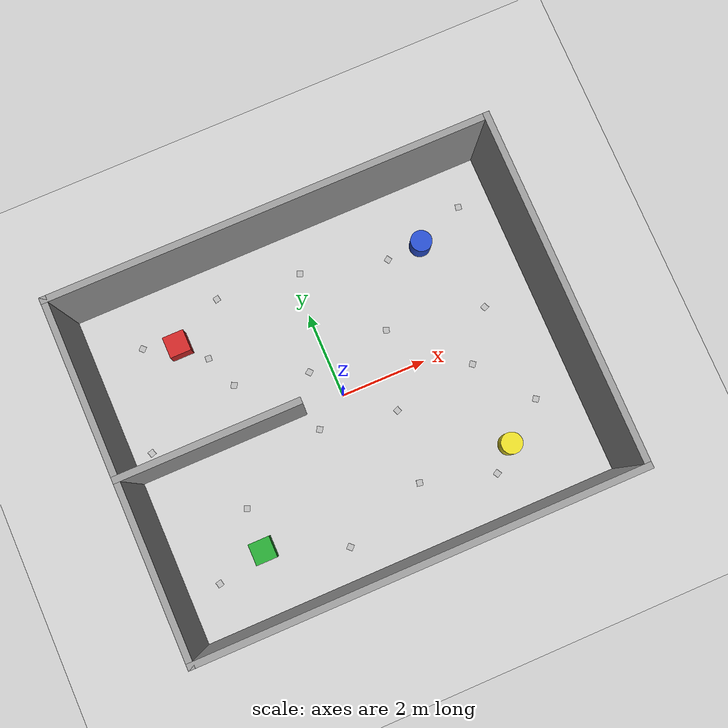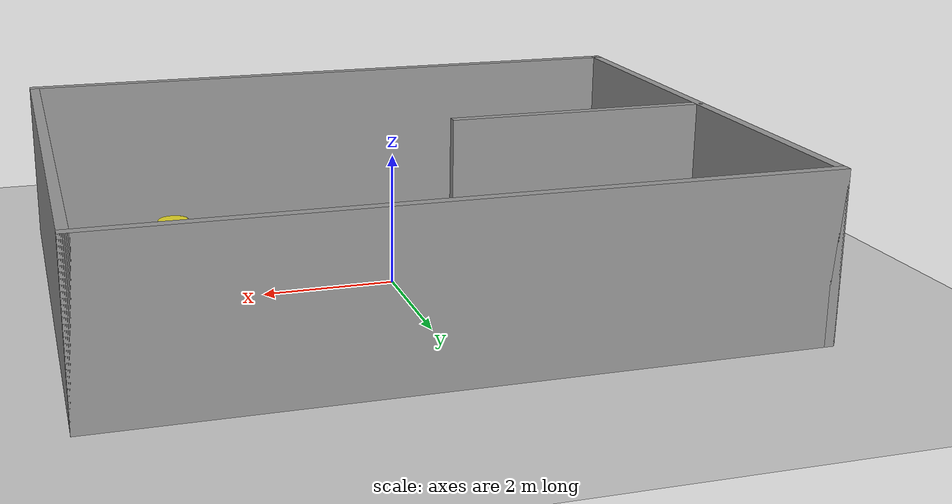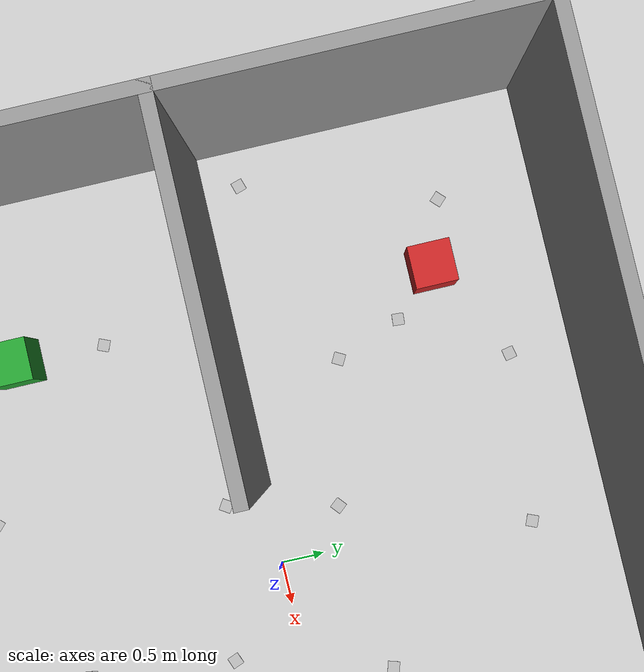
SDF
<?xml version="1.0" ?>
<sdf version="1.6">
  <world name="small_house">

    <include>
      <uri>model://sun</uri>
    </include>
    <include>
      <uri>model://ground_plane</uri>
    </include>

    <physics type="ode">
      <max_step_size>0.002</max_step_size>
      <real_time_factor>1</real_time_factor>
      <real_time_update_rate>500</real_time_update_rate>
    </physics>
    <scene>
      <ambient>0.4 0.4 0.4 1</ambient>
      <background>0.7 0.7 0.7 1</background>
      <shadows>0</shadows>
    </scene>

    <!-- small_house 小型室内世界 10m x 8m (Gazebo Classic) -->
    <model name="small_house">
      <static>1</static>
      <pose>0 0 0 0 0 0</pose>

      <link name="wall_south">
        <pose>0 -4 1.25 0 0 0</pose>
        <collision name="Wall_south_Collision">
          <geometry><box><size>10.15 0.15 2.5</size></box></geometry>
        </collision>
        <visual name="Wall_south_Visual">
          <geometry><box><size>10.15 0.15 2.5</size></box></geometry>
          <material>
            <script>
              <uri>file://media/materials/scripts/gazebo.material</uri>
              <name>Gazebo/Grey</name>
            </script>
          </material>
        </visual>
      </link>

      <link name="wall_north">
        <pose>0 4 1.25 0 0 0</pose>
        <collision name="Wall_north_Collision">
          <geometry><box><size>10.15 0.15 2.5</size></box></geometry>
        </collision>
        <visual name="Wall_north_Visual">
          <geometry><box><size>10.15 0.15 2.5</size></box></geometry>
          <material>
            <script>
              <uri>file://media/materials/scripts/gazebo.material</uri>
              <name>Gazebo/Grey</name>
            </script>
          </material>
        </visual>
      </link>

      <link name="wall_west">
        <pose>-5 0 1.25 0 0 0</pose>
        <collision name="Wall_west_Collision">
          <geometry><box><size>0.15 8.15 2.5</size></box></geometry>
        </collision>
        <visual name="Wall_west_Visual">
          <geometry><box><size>0.15 8.15 2.5</size></box></geometry>
          <material>
            <script>
              <uri>file://media/materials/scripts/gazebo.material</uri>
              <name>Gazebo/Grey</name>
            </script>
          </material>
        </visual>
      </link>

      <link name="wall_east">
        <pose>5 0 1.25 0 0 0</pose>
        <collision name="Wall_east_Collision">
          <geometry><box><size>0.15 8.15 2.5</size></box></geometry>
        </collision>
        <visual name="Wall_east_Visual">
          <geometry><box><size>0.15 8.15 2.5</size></box></geometry>
          <material>
            <script>
              <uri>file://media/materials/scripts/gazebo.material</uri>
              <name>Gazebo/Grey</name>
            </script>
          </material>
        </visual>
      </link>

      <link name="wall_inner">
        <pose>-3 0 1.25 0 0 0</pose>
        <collision name="Wall_inner_Collision">
          <geometry><box><size>4.15 0.15 2.5</size></box></geometry>
        </collision>
        <visual name="Wall_inner_Visual">
          <geometry><box><size>4.15 0.15 2.5</size></box></geometry>
          <material>
            <script>
              <uri>file://media/materials/scripts/gazebo.material</uri>
              <name>Gazebo/Grey</name>
            </script>
          </material>
        </visual>
      </link>

      <link name="obs_box_nw">
        <pose>-3 2.5 0.25 0 0 0</pose>
        <collision name="obs_box_nw_Collision">
          <geometry><box><size>0.5 0.5 0.5</size></box></geometry>
        </collision>
        <visual name="obs_box_nw_Visual">
          <geometry><box><size>0.5 0.5 0.5</size></box></geometry>
          <material>
            <script>
              <uri>file://media/materials/scripts/gazebo.material</uri>
              <name>Gazebo/Red</name>
            </script>
          </material>
        </visual>
      </link>

      <link name="obs_cyl_ne">
        <pose>3 2.5 0.25 0 0 0</pose>
        <collision name="obs_cyl_ne_Collision">
          <geometry><cylinder><radius>0.25</radius><length>0.5</length></cylinder></geometry>
        </collision>
        <visual name="obs_cyl_ne_Visual">
          <geometry><cylinder><radius>0.25</radius><length>0.5</length></cylinder></geometry>
          <material>
            <script>
              <uri>file://media/materials/scripts/gazebo.material</uri>
              <name>Gazebo/Blue</name>
            </script>
          </material>
        </visual>
      </link>

      <link name="obs_box_sw">
        <pose>-3 -2.5 0.25 0 0 0</pose>
        <collision name="obs_box_sw_Collision">
          <geometry><box><size>0.5 0.5 0.5</size></box></geometry>
        </collision>
        <visual name="obs_box_sw_Visual">
          <geometry><box><size>0.5 0.5 0.5</size></box></geometry>
          <material>
            <script>
              <uri>file://media/materials/scripts/gazebo.material</uri>
              <name>Gazebo/Green</name>
            </script>
          </material>
        </visual>
      </link>

      <link name="obs_cyl_se">
        <pose>3 -2.5 0.25 0 0 0</pose>
        <collision name="obs_cyl_se_Collision">
          <geometry><cylinder><radius>0.25</radius><length>0.5</length></cylinder></geometry>
        </collision>
        <visual name="obs_cyl_se_Visual">
          <geometry><cylinder><radius>0.25</radius><length>0.5</length></cylinder></geometry>
          <material>
            <script>
              <uri>file://media/materials/scripts/gazebo.material</uri>
              <name>Gazebo/Yellow</name>
            </script>
          </material>
        </visual>
      </link>
    </model>

    <!-- 20 个回形针地面贴图（YOLO 框选裁剪，见 materials/textures/clip_*.png） -->
    <model name="paperclip_01">
      <static>1</static>
      <pose>-4.20 -2.80 0.002 0 0 0.20</pose>
      <link name="link">
        <visual name="visual">
          <geometry><box><size>0.14 0.14 0.001</size></box></geometry>
          <material>
            <script>
              <uri>file://materials/scripts</uri>
              <uri>file://materials/textures</uri>
              <name>Clip/Clip01</name>
            </script>
          </material>
        </visual>
      </link>
    </model>
    <model name="paperclip_02">
      <static>1</static>
      <pose>-3.00 -1.50 0.002 0 0 -0.40</pose>
      <link name="link">
        <visual name="visual">
          <geometry><box><size>0.14 0.14 0.001</size></box></geometry>
          <material>
            <script>
              <uri>file://materials/scripts</uri>
              <uri>file://materials/textures</uri>
              <name>Clip/Clip02</name>
            </script>
          </material>
        </visual>
      </link>
    </model>
    <model name="paperclip_03">
      <static>1</static>
      <pose>-1.20 -3.20 0.002 0 0 0.80</pose>
      <link name="link">
        <visual name="visual">
          <geometry><box><size>0.14 0.14 0.001</size></box></geometry>
          <material>
            <script>
              <uri>file://materials/scripts</uri>
              <uri>file://materials/textures</uri>
              <name>Clip/Clip03</name>
            </script>
          </material>
        </visual>
      </link>
    </model>
    <model name="paperclip_04">
      <static>1</static>
      <pose>0.80 -2.50 0.002 0 0 -0.20</pose>
      <link name="link">
        <visual name="visual">
          <geometry><box><size>0.14 0.14 0.001</size></box></geometry>
          <material>
            <script>
              <uri>file://materials/scripts</uri>
              <uri>file://materials/textures</uri>
              <name>Clip/Clip04</name>
            </script>
          </material>
        </visual>
      </link>
    </model>
    <model name="paperclip_05">
      <static>1</static>
      <pose>2.50 -3.00 0.002 0 0 0.50</pose>
      <link name="link">
        <visual name="visual">
          <geometry><box><size>0.14 0.14 0.001</size></box></geometry>
          <material>
            <script>
              <uri>file://materials/scripts</uri>
              <uri>file://materials/textures</uri>
              <name>Clip/Clip05</name>
            </script>
          </material>
        </visual>
      </link>
    </model>
    <model name="paperclip_06">
      <static>1</static>
      <pose>4.00 -1.80 0.002 0 0 -0.60</pose>
      <link name="link">
        <visual name="visual">
          <geometry><box><size>0.14 0.14 0.001</size></box></geometry>
          <material>
            <script>
              <uri>file://materials/scripts</uri>
              <uri>file://materials/textures</uri>
              <name>Clip/Clip06</name>
            </script>
          </material>
        </visual>
      </link>
    </model>
    <model name="paperclip_07">
      <static>1</static>
      <pose>-4.50 0.50 0.002 0 0 0.30</pose>
      <link name="link">
        <visual name="visual">
          <geometry><box><size>0.14 0.14 0.001</size></box></geometry>
          <material>
            <script>
              <uri>file://materials/scripts</uri>
              <uri>file://materials/textures</uri>
              <name>Clip/Clip07</name>
            </script>
          </material>
        </visual>
      </link>
    </model>
    <model name="paperclip_08">
      <static>1</static>
      <pose>-2.20 1.20 0.002 0 0 -0.50</pose>
      <link name="link">
        <visual name="visual">
          <geometry><box><size>0.14 0.14 0.001</size></box></geometry>
          <material>
            <script>
              <uri>file://materials/scripts</uri>
              <uri>file://materials/textures</uri>
              <name>Clip/Clip08</name>
            </script>
          </material>
        </visual>
      </link>
    </model>
    <model name="paperclip_09">
      <static>1</static>
      <pose>-0.50 0.80 0.002 0 0 0.70</pose>
      <link name="link">
        <visual name="visual">
          <geometry><box><size>0.14 0.14 0.001</size></box></geometry>
          <material>
            <script>
              <uri>file://materials/scripts</uri>
              <uri>file://materials/textures</uri>
              <name>Clip/Clip09</name>
            </script>
          </material>
        </visual>
      </link>
    </model>
    <model name="paperclip_10">
      <static>1</static>
      <pose>1.50 1.00 0.002 0 0 -0.30</pose>
      <link name="link">
        <visual name="visual">
          <geometry><box><size>0.14 0.14 0.001</size></box></geometry>
          <material>
            <script>
              <uri>file://materials/scripts</uri>
              <uri>file://materials/textures</uri>
              <name>Clip/Clip10</name>
            </script>
          </material>
        </visual>
      </link>
    </model>
    <model name="paperclip_11">
      <static>1</static>
      <pose>3.80 0.60 0.002 0 0 0.40</pose>
      <link name="link">
        <visual name="visual">
          <geometry><box><size>0.14 0.14 0.001</size></box></geometry>
          <material>
            <script>
              <uri>file://materials/scripts</uri>
              <uri>file://materials/textures</uri>
              <name>Clip/Clip11</name>
            </script>
          </material>
        </visual>
      </link>
    </model>
    <model name="paperclip_12">
      <static>1</static>
      <pose>-3.80 2.80 0.002 0 0 -0.80</pose>
      <link name="link">
        <visual name="visual">
          <geometry><box><size>0.14 0.14 0.001</size></box></geometry>
          <material>
            <script>
              <uri>file://materials/scripts</uri>
              <uri>file://materials/textures</uri>
              <name>Clip/Clip12</name>
            </script>
          </material>
        </visual>
      </link>
    </model>
    <model name="paperclip_13">
      <static>1</static>
      <pose>-1.80 3.20 0.002 0 0 0.20</pose>
      <link name="link">
        <visual name="visual">
          <geometry><box><size>0.14 0.14 0.001</size></box></geometry>
          <material>
            <script>
              <uri>file://materials/scripts</uri>
              <uri>file://materials/textures</uri>
              <name>Clip/Clip13</name>
            </script>
          </material>
        </visual>
      </link>
    </model>
    <model name="paperclip_14">
      <static>1</static>
      <pose>0.20 3.00 0.002 0 0 -0.40</pose>
      <link name="link">
        <visual name="visual">
          <geometry><box><size>0.14 0.14 0.001</size></box></geometry>
          <material>
            <script>
              <uri>file://materials/scripts</uri>
              <uri>file://materials/textures</uri>
              <name>Clip/Clip14</name>
            </script>
          </material>
        </visual>
      </link>
    </model>
    <model name="paperclip_15">
      <static>1</static>
      <pose>2.20 2.50 0.002 0 0 0.60</pose>
      <link name="link">
        <visual name="visual">
          <geometry><box><size>0.14 0.14 0.001</size></box></geometry>
          <material>
            <script>
              <uri>file://materials/scripts</uri>
              <uri>file://materials/textures</uri>
              <name>Clip/Clip15</name>
            </script>
          </material>
        </visual>
      </link>
    </model>
    <model name="paperclip_16">
      <static>1</static>
      <pose>4.20 3.00 0.002 0 0 -0.20</pose>
      <link name="link">
        <visual name="visual">
          <geometry><box><size>0.14 0.14 0.001</size></box></geometry>
          <material>
            <script>
              <uri>file://materials/scripts</uri>
              <uri>file://materials/textures</uri>
              <name>Clip/Clip16</name>
            </script>
          </material>
        </visual>
      </link>
    </model>
    <model name="paperclip_17">
      <static>1</static>
      <pose>-0.80 -0.50 0.002 0 0 1.00</pose>
      <link name="link">
        <visual name="visual">
          <geometry><box><size>0.14 0.14 0.001</size></box></geometry>
          <material>
            <script>
              <uri>file://materials/scripts</uri>
              <uri>file://materials/textures</uri>
              <name>Clip/Clip17</name>
            </script>
          </material>
        </visual>
      </link>
    </model>
    <model name="paperclip_18">
      <static>1</static>
      <pose>1.00 -0.80 0.002 0 0 -1.20</pose>
      <link name="link">
        <visual name="visual">
          <geometry><box><size>0.14 0.14 0.001</size></box></geometry>
          <material>
            <script>
              <uri>file://materials/scripts</uri>
              <uri>file://materials/textures</uri>
              <name>Clip/Clip18</name>
            </script>
          </material>
        </visual>
      </link>
    </model>
    <model name="paperclip_19">
      <static>1</static>
      <pose>3.00 -0.50 0.002 0 0 0.90</pose>
      <link name="link">
        <visual name="visual">
          <geometry><box><size>0.14 0.14 0.001</size></box></geometry>
          <material>
            <script>
              <uri>file://materials/scripts</uri>
              <uri>file://materials/textures</uri>
              <name>Clip/Clip19</name>
            </script>
          </material>
        </visual>
      </link>
    </model>
    <model name="paperclip_20">
      <static>1</static>
      <pose>-2.50 2.00 0.002 0 0 1.50</pose>
      <link name="link">
        <visual name="visual">
          <geometry><box><size>0.14 0.14 0.001</size></box></geometry>
          <material>
            <script>
              <uri>file://materials/scripts</uri>
              <uri>file://materials/textures</uri>
              <name>Clip/Clip20</name>
            </script>
          </material>
        </visual>
      </link>
    </model>

  </world>
</sdf>
